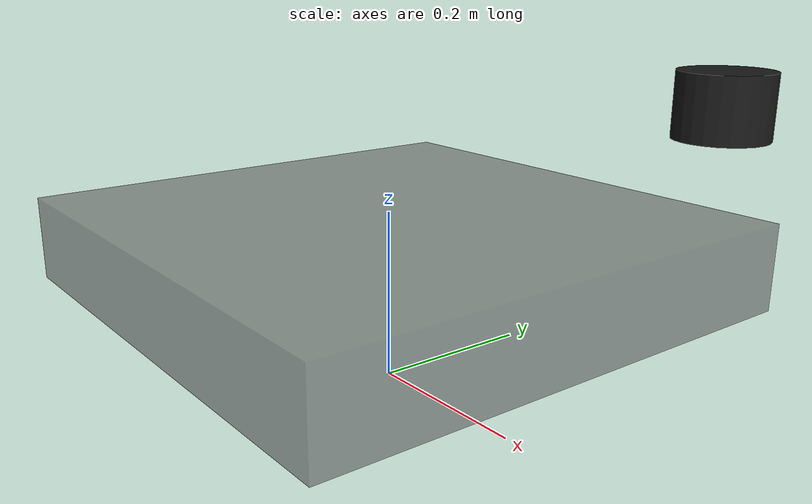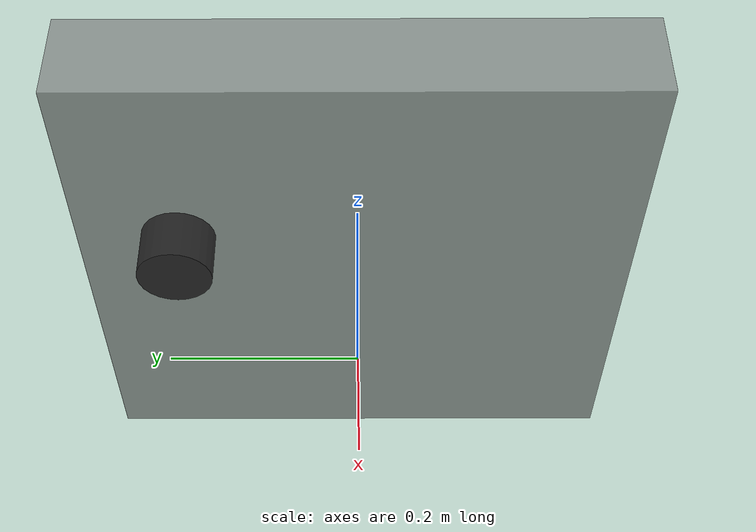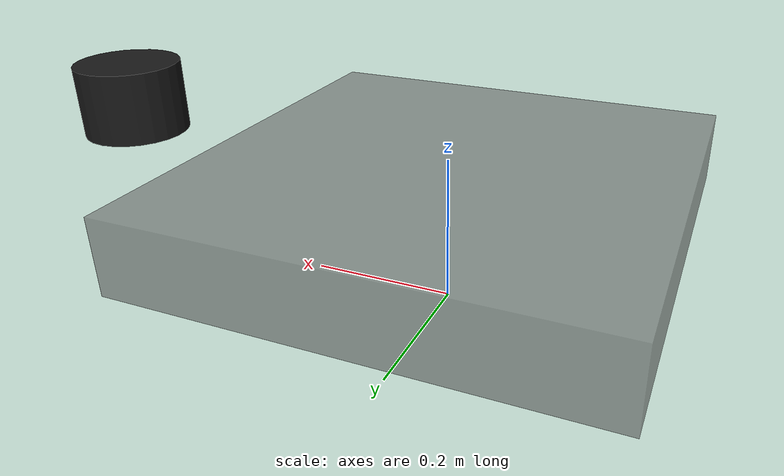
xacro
<?xml version="1.0"?>
<robot name="swerve_base" xmlns:xacro="http://www.ros.org/wiki/xacro">

  <!-- height of the base centre (base_link origin, the CAD datum the lidar offsets are measured from) above the floor [m] -->
  <xacro:arg name="base_centre_height" default="0.152"/>
  <!-- lidar mounting pose relative to base_link (REP-103: x forward, y left, z up) [m, rad] -->
  <xacro:arg name="lidar_x"   default="0.250"/>
  <xacro:arg name="lidar_y"   default="0.250"/>
  <xacro:arg name="lidar_z"   default="0.178"/>
  <xacro:arg name="lidar_yaw" default="0.0"/>
  <xacro:arg name="lidar_frame" default="velodyne"/>
  <!-- visual-only footprint box (does not affect Nav2; set Nav2 footprint separately) -->
  <xacro:arg name="base_length" default="0.60"/>
  <xacro:arg name="base_width"  default="0.60"/>
  <xacro:arg name="base_box_height" default="0.10"/>

  <!-- ground projection of the robot centre: root of the robot TF tree, child of odom -->
  <link name="base_footprint"/>

  <link name="base_link">
    <visual>
      <geometry><box size="$(arg base_length) $(arg base_width) $(arg base_box_height)"/></geometry>
      <material name="base_grey"><color rgba="0.4 0.4 0.4 0.6"/></material>
    </visual>
  </link>

  <joint name="base_footprint_to_base_link" type="fixed">
    <parent link="base_footprint"/>
    <child link="base_link"/>
    <origin xyz="0 0 $(arg base_centre_height)" rpy="0 0 0"/>
  </joint>

  <link name="$(arg lidar_frame)">
    <visual>
      <!-- VLP-16: 103 mm dia x 72 mm tall; data origin is 37.7 mm above the sensor base -->
      <origin xyz="0 0 -0.0017" rpy="0 0 0"/>
      <geometry><cylinder radius="0.0517" length="0.0717"/></geometry>
      <material name="lidar_dark"><color rgba="0.1 0.1 0.1 1.0"/></material>
    </visual>
  </link>

  <joint name="base_link_to_$(arg lidar_frame)" type="fixed">
    <parent link="base_link"/>
    <child link="$(arg lidar_frame)"/>
    <origin xyz="$(arg lidar_x) $(arg lidar_y) $(arg lidar_z)" rpy="0 0 $(arg lidar_yaw)"/>
  </joint>

</robot>
